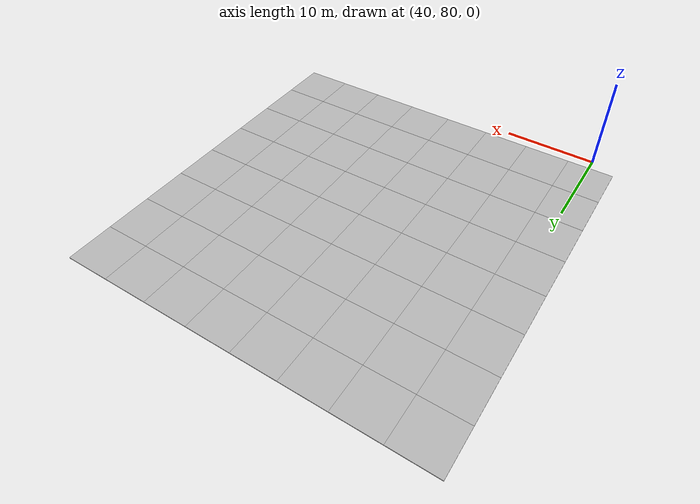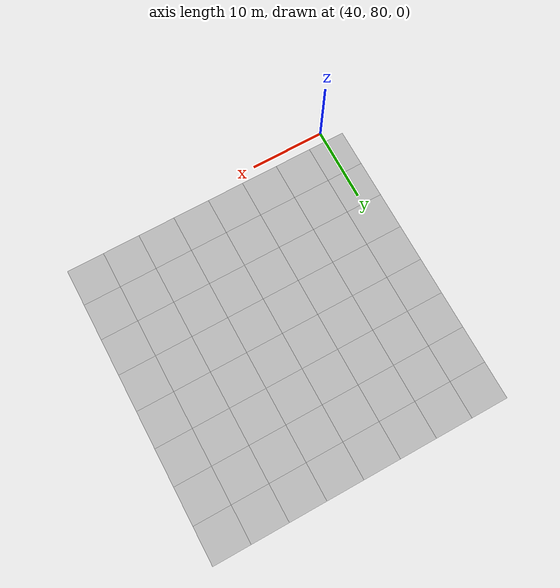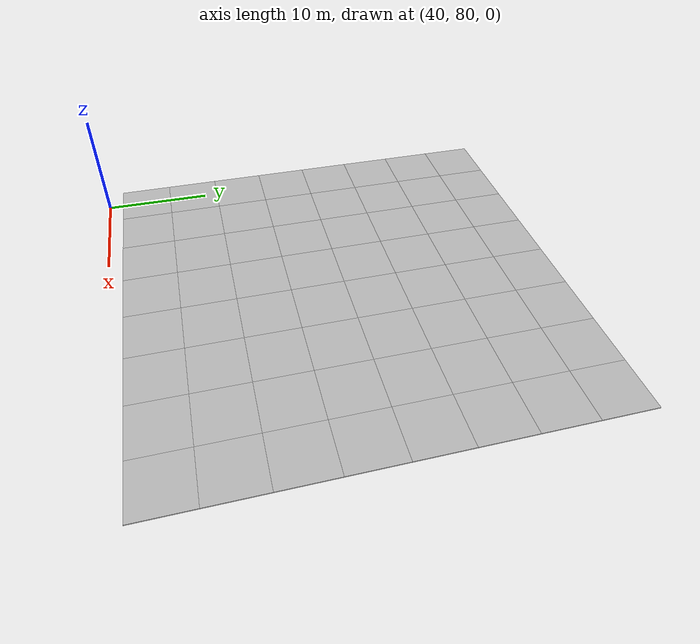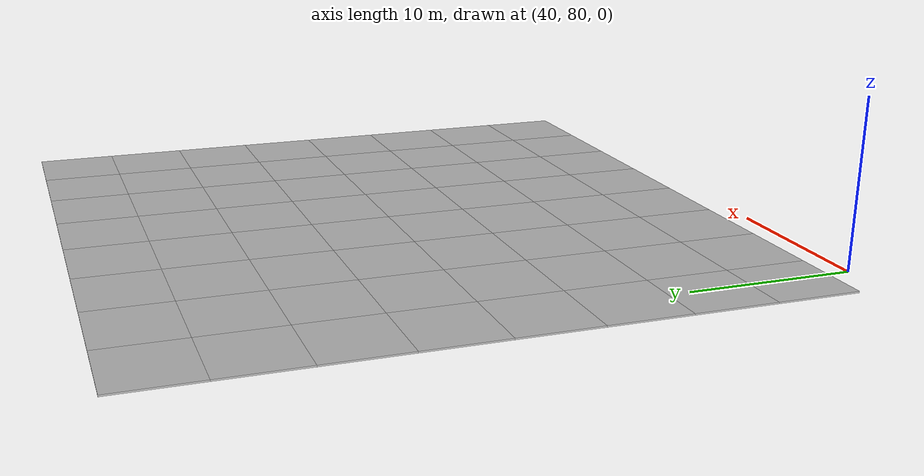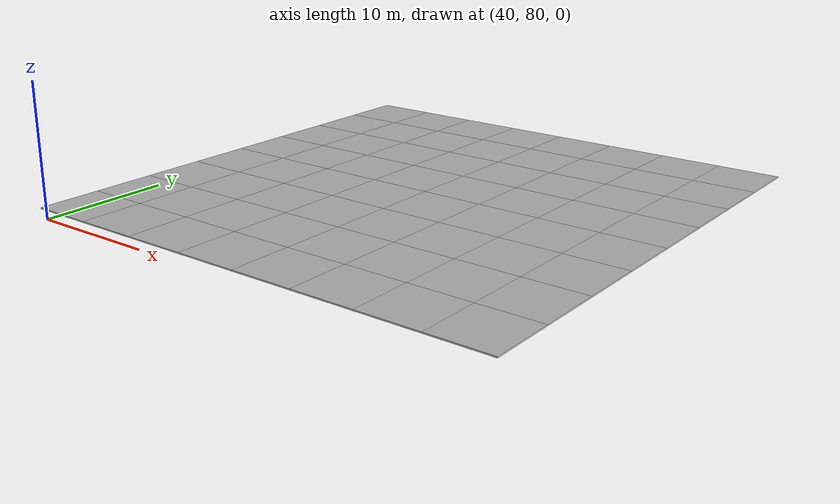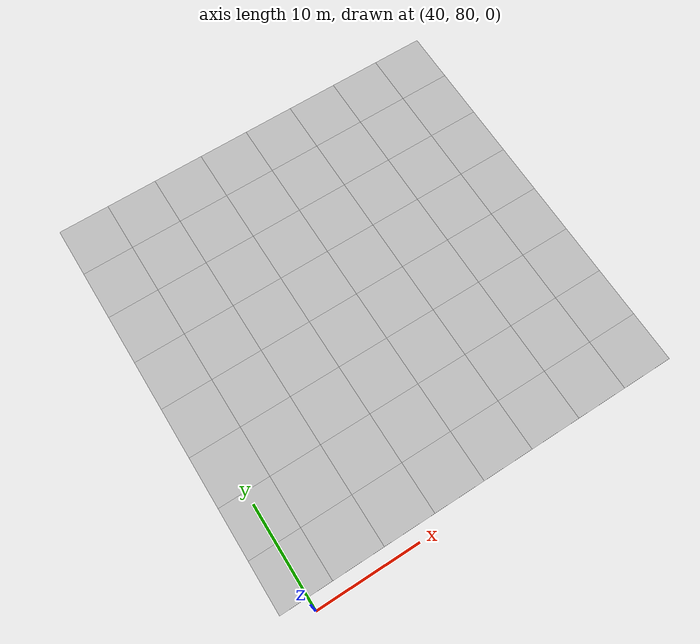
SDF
<sdf version="1.7">
 <world name="default">
  <model name="mud_plane_40x40_12">
   <model name="mud_plane_20x20">
    <model name="mud_plane">
     <static>1</static>
     <link name="link">
      <collision name="collision"><geometry><box><size>10 10 0.1</size></box></geometry></collision>
      <visual name="visual_1">
       <pose>-2.5 2.5 -0.05 0 -0 0</pose>
       <cast_shadows>0</cast_shadows>
       <geometry><box><size>5 5 0.1</size></box></geometry>
       <material>
        <script>
         <uri>model://mud_plane/materials/scripts</uri>
         <uri>model://mud_plane/materials/textures</uri>
         <name>vrc/mud</name>
        </script>
       </material>
      </visual>
      <visual name="visual_2">
       <pose>2.5 2.5 -0.05 0 -0 0</pose>
       <cast_shadows>0</cast_shadows>
       <geometry><box><size>5 5 0.1</size></box></geometry>
       <material>
        <script>
         <uri>model://mud_plane/materials/scripts</uri>
         <uri>model://mud_plane/materials/textures</uri>
         <name>vrc/mud</name>
        </script>
       </material>
      </visual>
      <visual name="visual_3">
       <pose>2.5 -2.5 -0.05 0 -0 0</pose>
       <cast_shadows>0</cast_shadows>
       <geometry><box><size>5 5 0.1</size></box></geometry>
       <material>
        <script>
         <uri>model://mud_plane/materials/scripts</uri>
         <uri>model://mud_plane/materials/textures</uri>
         <name>vrc/mud</name>
        </script>
       </material>
      </visual>
      <visual name="visual_4">
       <pose>-2.5 -2.5 -0.05 0 -0 0</pose>
       <cast_shadows>0</cast_shadows>
       <geometry><box><size>5 5 0.1</size></box></geometry>
       <material>
        <script>
         <uri>model://mud_plane/materials/scripts</uri>
         <uri>model://mud_plane/materials/textures</uri>
         <name>vrc/mud</name>
        </script>
       </material>
      </visual>
     </link>
     <pose>-4.99986 -4.99991 0 0 -0 0</pose>
    </model>
    <model name="mud_plane_0">
     <static>1</static>
     <link name="link">
      <collision name="collision"><geometry><box><size>10 10 0.1</size></box></geometry></collision>
      <visual name="visual_1">
       <pose>-2.5 2.5 -0.05 0 -0 0</pose>
       <cast_shadows>0</cast_shadows>
       <geometry><box><size>5 5 0.1</size></box></geometry>
       <material>
        <script>
         <uri>model://mud_plane/materials/scripts</uri>
         <uri>model://mud_plane/materials/textures</uri>
         <name>vrc/mud</name>
        </script>
       </material>
      </visual>
      <visual name="visual_2">
       <pose>2.5 2.5 -0.05 0 -0 0</pose>
       <cast_shadows>0</cast_shadows>
       <geometry><box><size>5 5 0.1</size></box></geometry>
       <material>
        <script>
         <uri>model://mud_plane/materials/scripts</uri>
         <uri>model://mud_plane/materials/textures</uri>
         <name>vrc/mud</name>
        </script>
       </material>
      </visual>
      <visual name="visual_3">
       <pose>2.5 -2.5 -0.05 0 -0 0</pose>
       <cast_shadows>0</cast_shadows>
       <geometry><box><size>5 5 0.1</size></box></geometry>
       <material>
        <script>
         <uri>model://mud_plane/materials/scripts</uri>
         <uri>model://mud_plane/materials/textures</uri>
         <name>vrc/mud</name>
        </script>
       </material>
      </visual>
      <visual name="visual_4">
       <pose>-2.5 -2.5 -0.05 0 -0 0</pose>
       <cast_shadows>0</cast_shadows>
       <geometry><box><size>5 5 0.1</size></box></geometry>
       <material>
        <script>
         <uri>model://mud_plane/materials/scripts</uri>
         <uri>model://mud_plane/materials/textures</uri>
         <name>vrc/mud</name>
        </script>
       </material>
      </visual>
     </link>
     <pose>-4.99946 4.99954 0 0 -0 0</pose>
    </model>
    <model name="mud_plane_1">
     <static>1</static>
     <link name="link">
      <collision name="collision"><geometry><box><size>10 10 0.1</size></box></geometry></collision>
      <visual name="visual_1">
       <pose>-2.5 2.5 -0.05 0 -0 0</pose>
       <cast_shadows>0</cast_shadows>
       <geometry><box><size>5 5 0.1</size></box></geometry>
       <material>
        <script>
         <uri>model://mud_plane/materials/scripts</uri>
         <uri>model://mud_plane/materials/textures</uri>
         <name>vrc/mud</name>
        </script>
       </material>
      </visual>
      <visual name="visual_2">
       <pose>2.5 2.5 -0.05 0 -0 0</pose>
       <cast_shadows>0</cast_shadows>
       <geometry><box><size>5 5 0.1</size></box></geometry>
       <material>
        <script>
         <uri>model://mud_plane/materials/scripts</uri>
         <uri>model://mud_plane/materials/textures</uri>
         <name>vrc/mud</name>
        </script>
       </material>
      </visual>
      <visual name="visual_3">
       <pose>2.5 -2.5 -0.05 0 -0 0</pose>
       <cast_shadows>0</cast_shadows>
       <geometry><box><size>5 5 0.1</size></box></geometry>
       <material>
        <script>
         <uri>model://mud_plane/materials/scripts</uri>
         <uri>model://mud_plane/materials/textures</uri>
         <name>vrc/mud</name>
        </script>
       </material>
      </visual>
      <visual name="visual_4">
       <pose>-2.5 -2.5 -0.05 0 -0 0</pose>
       <cast_shadows>0</cast_shadows>
       <geometry><box><size>5 5 0.1</size></box></geometry>
       <material>
        <script>
         <uri>model://mud_plane/materials/scripts</uri>
         <uri>model://mud_plane/materials/textures</uri>
         <name>vrc/mud</name>
        </script>
       </material>
      </visual>
     </link>
     <pose>4.99964 -4.99949 0 0 -0 0</pose>
    </model>
    <model name="mud_plane_2">
     <static>1</static>
     <link name="link">
      <collision name="collision"><geometry><box><size>10 10 0.1</size></box></geometry></collision>
      <visual name="visual_1">
       <pose>-2.5 2.5 -0.05 0 -0 0</pose>
       <cast_shadows>0</cast_shadows>
       <geometry><box><size>5 5 0.1</size></box></geometry>
       <material>
        <script>
         <uri>model://mud_plane/materials/scripts</uri>
         <uri>model://mud_plane/materials/textures</uri>
         <name>vrc/mud</name>
        </script>
       </material>
      </visual>
      <visual name="visual_2">
       <pose>2.5 2.5 -0.05 0 -0 0</pose>
       <cast_shadows>0</cast_shadows>
       <geometry><box><size>5 5 0.1</size></box></geometry>
       <material>
        <script>
         <uri>model://mud_plane/materials/scripts</uri>
         <uri>model://mud_plane/materials/textures</uri>
         <name>vrc/mud</name>
        </script>
       </material>
      </visual>
      <visual name="visual_3">
       <pose>2.5 -2.5 -0.05 0 -0 0</pose>
       <cast_shadows>0</cast_shadows>
       <geometry><box><size>5 5 0.1</size></box></geometry>
       <material>
        <script>
         <uri>model://mud_plane/materials/scripts</uri>
         <uri>model://mud_plane/materials/textures</uri>
         <name>vrc/mud</name>
        </script>
       </material>
      </visual>
      <visual name="visual_4">
       <pose>-2.5 -2.5 -0.05 0 -0 0</pose>
       <cast_shadows>0</cast_shadows>
       <geometry><box><size>5 5 0.1</size></box></geometry>
       <material>
        <script>
         <uri>model://mud_plane/materials/scripts</uri>
         <uri>model://mud_plane/materials/textures</uri>
         <name>vrc/mud</name>
        </script>
       </material>
      </visual>
     </link>
     <pose>4.99967 4.99986 0 0 -0 0</pose>
    </model>
    <static>0</static>
    <pose>-9.99895 9.99843 0 0 -0 0</pose>
   </model>
   <model name="mud_plane_20x20_0">
    <model name="mud_plane">
     <static>1</static>
     <link name="link">
      <collision name="collision"><geometry><box><size>10 10 0.1</size></box></geometry></collision>
      <visual name="visual_1">
       <pose>-2.5 2.5 -0.05 0 -0 0</pose>
       <cast_shadows>0</cast_shadows>
       <geometry><box><size>5 5 0.1</size></box></geometry>
       <material>
        <script>
         <uri>model://mud_plane/materials/scripts</uri>
         <uri>model://mud_plane/materials/textures</uri>
         <name>vrc/mud</name>
        </script>
       </material>
      </visual>
      <visual name="visual_2">
       <pose>2.5 2.5 -0.05 0 -0 0</pose>
       <cast_shadows>0</cast_shadows>
       <geometry><box><size>5 5 0.1</size></box></geometry>
       <material>
        <script>
         <uri>model://mud_plane/materials/scripts</uri>
         <uri>model://mud_plane/materials/textures</uri>
         <name>vrc/mud</name>
        </script>
       </material>
      </visual>
      <visual name="visual_3">
       <pose>2.5 -2.5 -0.05 0 -0 0</pose>
       <cast_shadows>0</cast_shadows>
       <geometry><box><size>5 5 0.1</size></box></geometry>
       <material>
        <script>
         <uri>model://mud_plane/materials/scripts</uri>
         <uri>model://mud_plane/materials/textures</uri>
         <name>vrc/mud</name>
        </script>
       </material>
      </visual>
      <visual name="visual_4">
       <pose>-2.5 -2.5 -0.05 0 -0 0</pose>
       <cast_shadows>0</cast_shadows>
       <geometry><box><size>5 5 0.1</size></box></geometry>
       <material>
        <script>
         <uri>model://mud_plane/materials/scripts</uri>
         <uri>model://mud_plane/materials/textures</uri>
         <name>vrc/mud</name>
        </script>
       </material>
      </visual>
     </link>
     <pose>-4.99986 -4.99991 0 0 -0 0</pose>
    </model>
    <model name="mud_plane_0">
     <static>1</static>
     <link name="link">
      <collision name="collision"><geometry><box><size>10 10 0.1</size></box></geometry></collision>
      <visual name="visual_1">
       <pose>-2.5 2.5 -0.05 0 -0 0</pose>
       <cast_shadows>0</cast_shadows>
       <geometry><box><size>5 5 0.1</size></box></geometry>
       <material>
        <script>
         <uri>model://mud_plane/materials/scripts</uri>
         <uri>model://mud_plane/materials/textures</uri>
         <name>vrc/mud</name>
        </script>
       </material>
      </visual>
      <visual name="visual_2">
       <pose>2.5 2.5 -0.05 0 -0 0</pose>
       <cast_shadows>0</cast_shadows>
       <geometry><box><size>5 5 0.1</size></box></geometry>
       <material>
        <script>
         <uri>model://mud_plane/materials/scripts</uri>
         <uri>model://mud_plane/materials/textures</uri>
         <name>vrc/mud</name>
        </script>
       </material>
      </visual>
      <visual name="visual_3">
       <pose>2.5 -2.5 -0.05 0 -0 0</pose>
       <cast_shadows>0</cast_shadows>
       <geometry><box><size>5 5 0.1</size></box></geometry>
       <material>
        <script>
         <uri>model://mud_plane/materials/scripts</uri>
         <uri>model://mud_plane/materials/textures</uri>
         <name>vrc/mud</name>
        </script>
       </material>
      </visual>
      <visual name="visual_4">
       <pose>-2.5 -2.5 -0.05 0 -0 0</pose>
       <cast_shadows>0</cast_shadows>
       <geometry><box><size>5 5 0.1</size></box></geometry>
       <material>
        <script>
         <uri>model://mud_plane/materials/scripts</uri>
         <uri>model://mud_plane/materials/textures</uri>
         <name>vrc/mud</name>
        </script>
       </material>
      </visual>
     </link>
     <pose>-4.99946 4.99954 0 0 -0 0</pose>
    </model>
    <model name="mud_plane_1">
     <static>1</static>
     <link name="link">
      <collision name="collision"><geometry><box><size>10 10 0.1</size></box></geometry></collision>
      <visual name="visual_1">
       <pose>-2.5 2.5 -0.05 0 -0 0</pose>
       <cast_shadows>0</cast_shadows>
       <geometry><box><size>5 5 0.1</size></box></geometry>
       <material>
        <script>
         <uri>model://mud_plane/materials/scripts</uri>
         <uri>model://mud_plane/materials/textures</uri>
         <name>vrc/mud</name>
        </script>
       </material>
      </visual>
      <visual name="visual_2">
       <pose>2.5 2.5 -0.05 0 -0 0</pose>
       <cast_shadows>0</cast_shadows>
       <geometry><box><size>5 5 0.1</size></box></geometry>
       <material>
        <script>
         <uri>model://mud_plane/materials/scripts</uri>
         <uri>model://mud_plane/materials/textures</uri>
         <name>vrc/mud</name>
        </script>
       </material>
      </visual>
      <visual name="visual_3">
       <pose>2.5 -2.5 -0.05 0 -0 0</pose>
       <cast_shadows>0</cast_shadows>
       <geometry><box><size>5 5 0.1</size></box></geometry>
       <material>
        <script>
         <uri>model://mud_plane/materials/scripts</uri>
         <uri>model://mud_plane/materials/textures</uri>
         <name>vrc/mud</name>
        </script>
       </material>
      </visual>
      <visual name="visual_4">
       <pose>-2.5 -2.5 -0.05 0 -0 0</pose>
       <cast_shadows>0</cast_shadows>
       <geometry><box><size>5 5 0.1</size></box></geometry>
       <material>
        <script>
         <uri>model://mud_plane/materials/scripts</uri>
         <uri>model://mud_plane/materials/textures</uri>
         <name>vrc/mud</name>
        </script>
       </material>
      </visual>
     </link>
     <pose>4.99964 -4.99949 0 0 -0 0</pose>
    </model>
    <model name="mud_plane_2">
     <static>1</static>
     <link name="link">
      <collision name="collision"><geometry><box><size>10 10 0.1</size></box></geometry></collision>
      <visual name="visual_1">
       <pose>-2.5 2.5 -0.05 0 -0 0</pose>
       <cast_shadows>0</cast_shadows>
       <geometry><box><size>5 5 0.1</size></box></geometry>
       <material>
        <script>
         <uri>model://mud_plane/materials/scripts</uri>
         <uri>model://mud_plane/materials/textures</uri>
         <name>vrc/mud</name>
        </script>
       </material>
      </visual>
      <visual name="visual_2">
       <pose>2.5 2.5 -0.05 0 -0 0</pose>
       <cast_shadows>0</cast_shadows>
       <geometry><box><size>5 5 0.1</size></box></geometry>
       <material>
        <script>
         <uri>model://mud_plane/materials/scripts</uri>
         <uri>model://mud_plane/materials/textures</uri>
         <name>vrc/mud</name>
        </script>
       </material>
      </visual>
      <visual name="visual_3">
       <pose>2.5 -2.5 -0.05 0 -0 0</pose>
       <cast_shadows>0</cast_shadows>
       <geometry><box><size>5 5 0.1</size></box></geometry>
       <material>
        <script>
         <uri>model://mud_plane/materials/scripts</uri>
         <uri>model://mud_plane/materials/textures</uri>
         <name>vrc/mud</name>
        </script>
       </material>
      </visual>
      <visual name="visual_4">
       <pose>-2.5 -2.5 -0.05 0 -0 0</pose>
       <cast_shadows>0</cast_shadows>
       <geometry><box><size>5 5 0.1</size></box></geometry>
       <material>
        <script>
         <uri>model://mud_plane/materials/scripts</uri>
         <uri>model://mud_plane/materials/textures</uri>
         <name>vrc/mud</name>
        </script>
       </material>
      </visual>
     </link>
     <pose>4.99967 4.99986 0 0 -0 0</pose>
    </model>
    <static>0</static>
    <pose>9.99933 9.9997 0 0 -0 0</pose>
   </model>
   <model name="mud_plane_20x20_1">
    <model name="mud_plane">
     <static>1</static>
     <link name="link">
      <collision name="collision"><geometry><box><size>10 10 0.1</size></box></geometry></collision>
      <visual name="visual_1">
       <pose>-2.5 2.5 -0.05 0 -0 0</pose>
       <cast_shadows>0</cast_shadows>
       <geometry><box><size>5 5 0.1</size></box></geometry>
       <material>
        <script>
         <uri>model://mud_plane/materials/scripts</uri>
         <uri>model://mud_plane/materials/textures</uri>
         <name>vrc/mud</name>
        </script>
       </material>
      </visual>
      <visual name="visual_2">
       <pose>2.5 2.5 -0.05 0 -0 0</pose>
       <cast_shadows>0</cast_shadows>
       <geometry><box><size>5 5 0.1</size></box></geometry>
       <material>
        <script>
         <uri>model://mud_plane/materials/scripts</uri>
         <uri>model://mud_plane/materials/textures</uri>
         <name>vrc/mud</name>
        </script>
       </material>
      </visual>
      <visual name="visual_3">
       <pose>2.5 -2.5 -0.05 0 -0 0</pose>
       <cast_shadows>0</cast_shadows>
       <geometry><box><size>5 5 0.1</size></box></geometry>
       <material>
        <script>
         <uri>model://mud_plane/materials/scripts</uri>
         <uri>model://mud_plane/materials/textures</uri>
         <name>vrc/mud</name>
        </script>
       </material>
      </visual>
      <visual name="visual_4">
       <pose>-2.5 -2.5 -0.05 0 -0 0</pose>
       <cast_shadows>0</cast_shadows>
       <geometry><box><size>5 5 0.1</size></box></geometry>
       <material>
        <script>
         <uri>model://mud_plane/materials/scripts</uri>
         <uri>model://mud_plane/materials/textures</uri>
         <name>vrc/mud</name>
        </script>
       </material>
      </visual>
     </link>
     <pose>-4.99986 -4.99991 0 0 -0 0</pose>
    </model>
    <model name="mud_plane_0">
     <static>1</static>
     <link name="link">
      <collision name="collision"><geometry><box><size>10 10 0.1</size></box></geometry></collision>
      <visual name="visual_1">
       <pose>-2.5 2.5 -0.05 0 -0 0</pose>
       <cast_shadows>0</cast_shadows>
       <geometry><box><size>5 5 0.1</size></box></geometry>
       <material>
        <script>
         <uri>model://mud_plane/materials/scripts</uri>
         <uri>model://mud_plane/materials/textures</uri>
         <name>vrc/mud</name>
        </script>
       </material>
      </visual>
      <visual name="visual_2">
       <pose>2.5 2.5 -0.05 0 -0 0</pose>
       <cast_shadows>0</cast_shadows>
       <geometry><box><size>5 5 0.1</size></box></geometry>
       <material>
        <script>
         <uri>model://mud_plane/materials/scripts</uri>
         <uri>model://mud_plane/materials/textures</uri>
         <name>vrc/mud</name>
        </script>
       </material>
      </visual>
      <visual name="visual_3">
       <pose>2.5 -2.5 -0.05 0 -0 0</pose>
       <cast_shadows>0</cast_shadows>
       <geometry><box><size>5 5 0.1</size></box></geometry>
       <material>
        <script>
         <uri>model://mud_plane/materials/scripts</uri>
         <uri>model://mud_plane/materials/textures</uri>
         <name>vrc/mud</name>
        </script>
       </material>
      </visual>
      <visual name="visual_4">
       <pose>-2.5 -2.5 -0.05 0 -0 0</pose>
       <cast_shadows>0</cast_shadows>
       <geometry><box><size>5 5 0.1</size></box></geometry>
       <material>
        <script>
         <uri>model://mud_plane/materials/scripts</uri>
         <uri>model://mud_plane/materials/textures</uri>
         <name>vrc/mud</name>
        </script>
       </material>
      </visual>
     </link>
     <pose>-4.99946 4.99954 0 0 -0 0</pose>
    </model>
    <model name="mud_plane_1">
     <static>1</static>
     <link name="link">
      <collision name="collision"><geometry><box><size>10 10 0.1</size></box></geometry></collision>
      <visual name="visual_1">
       <pose>-2.5 2.5 -0.05 0 -0 0</pose>
       <cast_shadows>0</cast_shadows>
       <geometry><box><size>5 5 0.1</size></box></geometry>
       <material>
        <script>
         <uri>model://mud_plane/materials/scripts</uri>
         <uri>model://mud_plane/materials/textures</uri>
         <name>vrc/mud</name>
        </script>
       </material>
      </visual>
      <visual name="visual_2">
       <pose>2.5 2.5 -0.05 0 -0 0</pose>
       <cast_shadows>0</cast_shadows>
       <geometry><box><size>5 5 0.1</size></box></geometry>
       <material>
        <script>
         <uri>model://mud_plane/materials/scripts</uri>
         <uri>model://mud_plane/materials/textures</uri>
         <name>vrc/mud</name>
        </script>
       </material>
      </visual>
      <visual name="visual_3">
       <pose>2.5 -2.5 -0.05 0 -0 0</pose>
       <cast_shadows>0</cast_shadows>
       <geometry><box><size>5 5 0.1</size></box></geometry>
       <material>
        <script>
         <uri>model://mud_plane/materials/scripts</uri>
         <uri>model://mud_plane/materials/textures</uri>
         <name>vrc/mud</name>
        </script>
       </material>
      </visual>
      <visual name="visual_4">
       <pose>-2.5 -2.5 -0.05 0 -0 0</pose>
       <cast_shadows>0</cast_shadows>
       <geometry><box><size>5 5 0.1</size></box></geometry>
       <material>
        <script>
         <uri>model://mud_plane/materials/scripts</uri>
         <uri>model://mud_plane/materials/textures</uri>
         <name>vrc/mud</name>
        </script>
       </material>
      </visual>
     </link>
     <pose>4.99964 -4.99949 0 0 -0 0</pose>
    </model>
    <model name="mud_plane_2">
     <static>1</static>
     <link name="link">
      <collision name="collision"><geometry><box><size>10 10 0.1</size></box></geometry></collision>
      <visual name="visual_1">
       <pose>-2.5 2.5 -0.05 0 -0 0</pose>
       <cast_shadows>0</cast_shadows>
       <geometry><box><size>5 5 0.1</size></box></geometry>
       <material>
        <script>
         <uri>model://mud_plane/materials/scripts</uri>
         <uri>model://mud_plane/materials/textures</uri>
         <name>vrc/mud</name>
        </script>
       </material>
      </visual>
      <visual name="visual_2">
       <pose>2.5 2.5 -0.05 0 -0 0</pose>
       <cast_shadows>0</cast_shadows>
       <geometry><box><size>5 5 0.1</size></box></geometry>
       <material>
        <script>
         <uri>model://mud_plane/materials/scripts</uri>
         <uri>model://mud_plane/materials/textures</uri>
         <name>vrc/mud</name>
        </script>
       </material>
      </visual>
      <visual name="visual_3">
       <pose>2.5 -2.5 -0.05 0 -0 0</pose>
       <cast_shadows>0</cast_shadows>
       <geometry><box><size>5 5 0.1</size></box></geometry>
       <material>
        <script>
         <uri>model://mud_plane/materials/scripts</uri>
         <uri>model://mud_plane/materials/textures</uri>
         <name>vrc/mud</name>
        </script>
       </material>
      </visual>
      <visual name="visual_4">
       <pose>-2.5 -2.5 -0.05 0 -0 0</pose>
       <cast_shadows>0</cast_shadows>
       <geometry><box><size>5 5 0.1</size></box></geometry>
       <material>
        <script>
         <uri>model://mud_plane/materials/scripts</uri>
         <uri>model://mud_plane/materials/textures</uri>
         <name>vrc/mud</name>
        </script>
       </material>
      </visual>
     </link>
     <pose>4.99967 4.99986 0 0 -0 0</pose>
    </model>
    <static>0</static>
    <pose>9.9993 -9.99877 0 0 -0 0</pose>
   </model>
   <model name="mud_plane_20x20_2">
    <model name="mud_plane">
     <static>1</static>
     <link name="link">
      <collision name="collision"><geometry><box><size>10 10 0.1</size></box></geometry></collision>
      <visual name="visual_1">
       <pose>-2.5 2.5 -0.05 0 -0 0</pose>
       <cast_shadows>0</cast_shadows>
       <geometry><box><size>5 5 0.1</size></box></geometry>
       <material>
        <script>
         <uri>model://mud_plane/materials/scripts</uri>
         <uri>model://mud_plane/materials/textures</uri>
         <name>vrc/mud</name>
        </script>
       </material>
      </visual>
      <visual name="visual_2">
       <pose>2.5 2.5 -0.05 0 -0 0</pose>
       <cast_shadows>0</cast_shadows>
       <geometry><box><size>5 5 0.1</size></box></geometry>
       <material>
        <script>
         <uri>model://mud_plane/materials/scripts</uri>
         <uri>model://mud_plane/materials/textures</uri>
         <name>vrc/mud</name>
        </script>
       </material>
      </visual>
      <visual name="visual_3">
       <pose>2.5 -2.5 -0.05 0 -0 0</pose>
       <cast_shadows>0</cast_shadows>
       <geometry><box><size>5 5 0.1</size></box></geometry>
       <material>
        <script>
         <uri>model://mud_plane/materials/scripts</uri>
         <uri>model://mud_plane/materials/textures</uri>
         <name>vrc/mud</name>
        </script>
       </material>
      </visual>
      <visual name="visual_4">
       <pose>-2.5 -2.5 -0.05 0 -0 0</pose>
       <cast_shadows>0</cast_shadows>
       <geometry><box><size>5 5 0.1</size></box></geometry>
       <material>
        <script>
         <uri>model://mud_plane/materials/scripts</uri>
         <uri>model://mud_plane/materials/textures</uri>
         <name>vrc/mud</name>
        </script>
       </material>
      </visual>
     </link>
     <pose>-4.99986 -4.99991 0 0 -0 0</pose>
    </model>
    <model name="mud_plane_0">
     <static>1</static>
     <link name="link">
      <collision name="collision"><geometry><box><size>10 10 0.1</size></box></geometry></collision>
      <visual name="visual_1">
       <pose>-2.5 2.5 -0.05 0 -0 0</pose>
       <cast_shadows>0</cast_shadows>
       <geometry><box><size>5 5 0.1</size></box></geometry>
       <material>
        <script>
         <uri>model://mud_plane/materials/scripts</uri>
         <uri>model://mud_plane/materials/textures</uri>
         <name>vrc/mud</name>
        </script>
       </material>
      </visual>
      <visual name="visual_2">
       <pose>2.5 2.5 -0.05 0 -0 0</pose>
       <cast_shadows>0</cast_shadows>
       <geometry><box><size>5 5 0.1</size></box></geometry>
       <material>
        <script>
         <uri>model://mud_plane/materials/scripts</uri>
         <uri>model://mud_plane/materials/textures</uri>
         <name>vrc/mud</name>
        </script>
       </material>
      </visual>
      <visual name="visual_3">
       <pose>2.5 -2.5 -0.05 0 -0 0</pose>
       <cast_shadows>0</cast_shadows>
       <geometry><box><size>5 5 0.1</size></box></geometry>
       <material>
        <script>
         <uri>model://mud_plane/materials/scripts</uri>
         <uri>model://mud_plane/materials/textures</uri>
         <name>vrc/mud</name>
        </script>
       </material>
      </visual>
      <visual name="visual_4">
       <pose>-2.5 -2.5 -0.05 0 -0 0</pose>
       <cast_shadows>0</cast_shadows>
       <geometry><box><size>5 5 0.1</size></box></geometry>
       <material>
        <script>
         <uri>model://mud_plane/materials/scripts</uri>
         <uri>model://mud_plane/materials/textures</uri>
         <name>vrc/mud</name>
        </script>
       </material>
      </visual>
     </link>
     <pose>-4.99946 4.99954 0 0 -0 0</pose>
    </model>
    <model name="mud_plane_1">
     <static>1</static>
     <link name="link">
      <collision name="collision"><geometry><box><size>10 10 0.1</size></box></geometry></collision>
      <visual name="visual_1">
       <pose>-2.5 2.5 -0.05 0 -0 0</pose>
       <cast_shadows>0</cast_shadows>
       <geometry><box><size>5 5 0.1</size></box></geometry>
       <material>
        <script>
         <uri>model://mud_plane/materials/scripts</uri>
         <uri>model://mud_plane/materials/textures</uri>
         <name>vrc/mud</name>
        </script>
       </material>
      </visual>
      <visual name="visual_2">
       <pose>2.5 2.5 -0.05 0 -0 0</pose>
       <cast_shadows>0</cast_shadows>
       <geometry><box><size>5 5 0.1</size></box></geometry>
       <material>
        <script>
         <uri>model://mud_plane/materials/scripts</uri>
         <uri>model://mud_plane/materials/textures</uri>
         <name>vrc/mud</name>
        </script>
       </material>
      </visual>
      <visual name="visual_3">
       <pose>2.5 -2.5 -0.05 0 -0 0</pose>
       <cast_shadows>0</cast_shadows>
       <geometry><box><size>5 5 0.1</size></box></geometry>
       <material>
        <script>
         <uri>model://mud_plane/materials/scripts</uri>
         <uri>model://mud_plane/materials/textures</uri>
         <name>vrc/mud</name>
        </script>
       </material>
      </visual>
      <visual name="visual_4">
       <pose>-2.5 -2.5 -0.05 0 -0 0</pose>
       <cast_shadows>0</cast_shadows>
       <geometry><box><size>5 5 0.1</size></box></geometry>
       <material>
        <script>
         <uri>model://mud_plane/materials/scripts</uri>
         <uri>model://mud_plane/materials/textures</uri>
         <name>vrc/mud</name>
        </script>
       </material>
      </visual>
     </link>
     <pose>4.99964 -4.99949 0 0 -0 0</pose>
    </model>
    <model name="mud_plane_2">
     <static>1</static>
     <link name="link">
      <collision name="collision"><geometry><box><size>10 10 0.1</size></box></geometry></collision>
      <visual name="visual_1">
       <pose>-2.5 2.5 -0.05 0 -0 0</pose>
       <cast_shadows>0</cast_shadows>
       <geometry><box><size>5 5 0.1</size></box></geometry>
       <material>
        <script>
         <uri>model://mud_plane/materials/scripts</uri>
         <uri>model://mud_plane/materials/textures</uri>
         <name>vrc/mud</name>
        </script>
       </material>
      </visual>
      <visual name="visual_2">
       <pose>2.5 2.5 -0.05 0 -0 0</pose>
       <cast_shadows>0</cast_shadows>
       <geometry><box><size>5 5 0.1</size></box></geometry>
       <material>
        <script>
         <uri>model://mud_plane/materials/scripts</uri>
         <uri>model://mud_plane/materials/textures</uri>
         <name>vrc/mud</name>
        </script>
       </material>
      </visual>
      <visual name="visual_3">
       <pose>2.5 -2.5 -0.05 0 -0 0</pose>
       <cast_shadows>0</cast_shadows>
       <geometry><box><size>5 5 0.1</size></box></geometry>
       <material>
        <script>
         <uri>model://mud_plane/materials/scripts</uri>
         <uri>model://mud_plane/materials/textures</uri>
         <name>vrc/mud</name>
        </script>
       </material>
      </visual>
      <visual name="visual_4">
       <pose>-2.5 -2.5 -0.05 0 -0 0</pose>
       <cast_shadows>0</cast_shadows>
       <geometry><box><size>5 5 0.1</size></box></geometry>
       <material>
        <script>
         <uri>model://mud_plane/materials/scripts</uri>
         <uri>model://mud_plane/materials/textures</uri>
         <name>vrc/mud</name>
        </script>
       </material>
      </visual>
     </link>
     <pose>4.99967 4.99986 0 0 -0 0</pose>
    </model>
    <static>0</static>
    <pose>-9.99969 -9.99935 0 0 -0 0</pose>
   </model>
   <static>0</static>
   <pose>57.3527 101.272 0 0 -0 0</pose>
  </model>
 </world>
</sdf>
